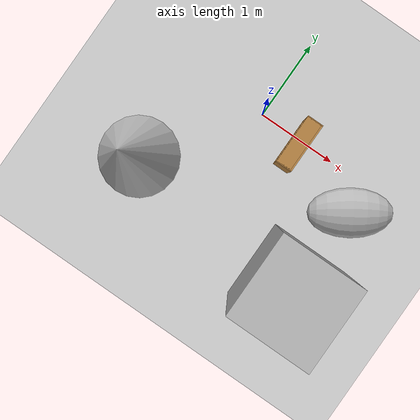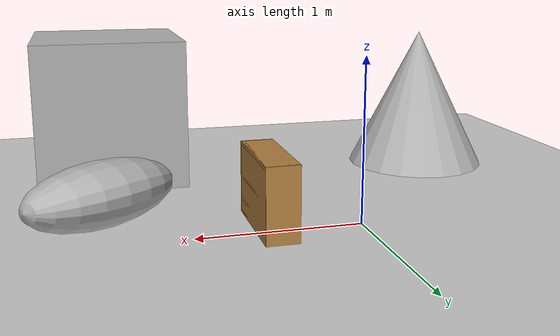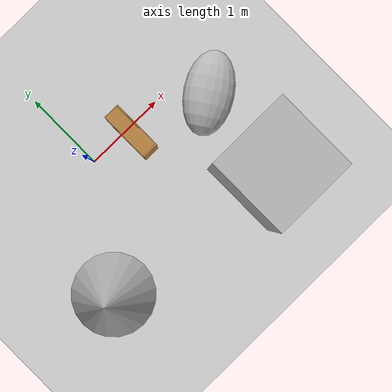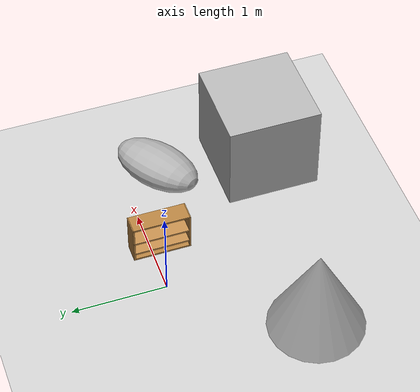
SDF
<sdf version='1.10'>
  <world name='empty'>
    <physics name='1ms' type='ignored'>
      <max_step_size>0.001</max_step_size>
      <real_time_factor>1</real_time_factor>
      <real_time_update_rate>1000</real_time_update_rate>
    </physics>
    <plugin name='gz::sim::systems::Physics' filename='gz-sim-physics-system'/>
    <plugin name='gz::sim::systems::UserCommands' filename='gz-sim-user-commands-system'/>
    <plugin name='gz::sim::systems::SceneBroadcaster' filename='gz-sim-scene-broadcaster-system'/>
    <plugin name='gz::sim::systems::Contact' filename='gz-sim-contact-system'/>
    <gravity>0 0 -9.8000000000000007</gravity>
    <magnetic_field>5.5644999999999998e-06 2.2875799999999999e-05 -4.2388400000000002e-05</magnetic_field>
    <atmosphere type='adiabatic'/>
    <scene>
      <ambient>0.400000006 0.400000006 0.400000006 1</ambient>
      <background>0.699999988 0.699999988 0.699999988 1</background>
      <shadows>true</shadows>
    </scene>
    <gui>
      <camera name='user_camera'>
        <pose>-6 0 6 0 0.5 0</pose>
      </camera>
    </gui>
    <model name='ground_plane'>
      <static>true</static>
      <link name='link'>
        <collision name='collision'>
          <geometry>
            <plane>
              <normal>0 0 1</normal>
              <size>100 100</size>
            </plane>
          </geometry>
          <surface>
            <friction>
              <ode/>
            </friction>
            <bounce/>
            <contact/>
          </surface>
        </collision>
        <visual name='visual'>
          <geometry>
            <plane>
              <normal>0 0 1</normal>
              <size>100 100</size>
            </plane>
          </geometry>
          <material>
            <ambient>0.800000012 0.800000012 0.800000012 1</ambient>
            <diffuse>0.800000012 0.800000012 0.800000012 1</diffuse>
            <specular>0.800000012 0.800000012 0.800000012 1</specular>
          </material>
        </visual>
        <pose>0 0 0 0 0 0</pose>
        <inertial>
          <pose>0 0 0 0 0 0</pose>
          <mass>1</mass>
          <inertia>
            <ixx>1</ixx>
            <ixy>0</ixy>
            <ixz>0</ixz>
            <iyy>1</iyy>
            <iyz>0</iyz>
            <izz>1</izz>
          </inertia>
        </inertial>
        <enable_wind>false</enable_wind>
      </link>
      <pose>0 0 0 0 0 0</pose>
      <self_collide>false</self_collide>
    </model>
    <model name='bookshelf'>
      <static>true</static>
      <pose>0.63 -0.10 0.0 0 0 0</pose>

      <!-- Back panel: 0.60m wide × 0.45m tall × 0.02m thick -->
      <link name='back'>
        <pose>0.0 0.0 0.225 0 0 0</pose>
        <visual name='v'><geometry><box><size>0.02 0.60 0.45</size></box></geometry>
          <material><ambient>0.55 0.35 0.15 1</ambient><diffuse>0.7 0.5 0.25 1</diffuse></material>
        </visual>
        <collision name='c'><geometry><box><size>0.02 0.60 0.45</size></box></geometry></collision>
        <inertial><mass>5</mass><inertia><ixx>0.1</ixx><ixy>0</ixy><ixz>0</ixz><iyy>0.1</iyy><iyz>0</iyz><izz>0.1</izz></inertia></inertial>
      </link>

      <!-- Left side panel -->
      <link name='side_l'>
        <pose>-0.09 -0.30 0.225 0 0 0</pose>
        <visual name='v'><geometry><box><size>0.20 0.02 0.45</size></box></geometry>
          <material><ambient>0.55 0.35 0.15 1</ambient><diffuse>0.7 0.5 0.25 1</diffuse></material>
        </visual>
        <collision name='c'><geometry><box><size>0.20 0.02 0.45</size></box></geometry></collision>
        <inertial><mass>2</mass><inertia><ixx>0.05</ixx><ixy>0</ixy><ixz>0</ixz><iyy>0.05</iyy><iyz>0</iyz><izz>0.05</izz></inertia></inertial>
      </link>

      <!-- Right side panel -->
      <link name='side_r'>
        <pose>-0.09 0.30 0.225 0 0 0</pose>
        <visual name='v'><geometry><box><size>0.20 0.02 0.45</size></box></geometry>
          <material><ambient>0.55 0.35 0.15 1</ambient><diffuse>0.7 0.5 0.25 1</diffuse></material>
        </visual>
        <collision name='c'><geometry><box><size>0.20 0.02 0.45</size></box></geometry></collision>
        <inertial><mass>2</mass><inertia><ixx>0.05</ixx><ixy>0</ixy><ixz>0</ixz><iyy>0.05</iyy><iyz>0</iyz><izz>0.05</izz></inertia></inertial>
      </link>

      <!-- Bottom board (floor of shelf) -->
      <link name='floor'>
        <pose>-0.09 0.0 0.01 0 0 0</pose>
        <visual name='v'><geometry><box><size>0.20 0.60 0.02</size></box></geometry>
          <material><ambient>0.55 0.35 0.15 1</ambient><diffuse>0.7 0.5 0.25 1</diffuse></material>
        </visual>
        <collision name='c'><geometry><box><size>0.20 0.60 0.02</size></box></geometry></collision>
        <inertial><mass>2</mass><inertia><ixx>0.05</ixx><ixy>0</ixy><ixz>0</ixz><iyy>0.05</iyy><iyz>0</iyz><izz>0.05</izz></inertia></inertial>
      </link>

      <!-- Shelf 1: top surface at z=0.10m (arm position A hovers 3cm above) -->
      <link name='shelf1'>
        <pose>-0.09 0.0 0.09 0 0 0</pose>
        <visual name='v'><geometry><box><size>0.20 0.60 0.02</size></box></geometry>
          <material><ambient>0.6 0.4 0.2 1</ambient><diffuse>0.75 0.55 0.3 1</diffuse></material>
        </visual>
        <collision name='c'><geometry><box><size>0.20 0.60 0.02</size></box></geometry></collision>
        <inertial><mass>2</mass><inertia><ixx>0.05</ixx><ixy>0</ixy><ixz>0</ixz><iyy>0.05</iyy><iyz>0</iyz><izz>0.05</izz></inertia></inertial>
      </link>

      <!-- Shelf 2: top surface at z=0.25m (arm position B hovers 3cm above) -->
      <link name='shelf2'>
        <pose>-0.09 0.0 0.24 0 0 0</pose>
        <visual name='v'><geometry><box><size>0.20 0.60 0.02</size></box></geometry>
          <material><ambient>0.6 0.4 0.2 1</ambient><diffuse>0.75 0.55 0.3 1</diffuse></material>
        </visual>
        <collision name='c'><geometry><box><size>0.20 0.60 0.02</size></box></geometry></collision>
        <inertial><mass>2</mass><inertia><ixx>0.05</ixx><ixy>0</ixy><ixz>0</ixz><iyy>0.05</iyy><iyz>0</iyz><izz>0.05</izz></inertia></inertial>
      </link>

      <!-- Top board -->
      <link name='top'>
        <pose>-0.09 0.0 0.44 0 0 0</pose>
        <visual name='v'><geometry><box><size>0.20 0.60 0.02</size></box></geometry>
          <material><ambient>0.55 0.35 0.15 1</ambient><diffuse>0.7 0.5 0.25 1</diffuse></material>
        </visual>
        <collision name='c'><geometry><box><size>0.20 0.60 0.02</size></box></geometry></collision>
        <inertial><mass>2</mass><inertia><ixx>0.05</ixx><ixy>0</ixy><ixz>0</ixz><iyy>0.05</iyy><iyz>0</iyz><izz>0.05</izz></inertia></inertial>
      </link>
    </model>

    <model name='box'>
      <pose>1.3760066261657944 -1.4864131443499584 0.49999999990199806 6.2287739151293738e-22 9.3279666454713669e-22 -3.6315533669320137e-22</pose>
      <link name='box_link'>
        <inertial>
          <inertia>
            <ixx>0.16666</ixx>
            <ixy>0</ixy>
            <ixz>0</ixz>
            <iyy>0.16666</iyy>
            <iyz>0</iyz>
            <izz>0.16666</izz>
          </inertia>
          <mass>1</mass>
          <pose>0 0 0 0 0 0</pose>
        </inertial>
        <collision name='box_collision'>
          <geometry>
            <box>
              <size>1 1 1</size>
            </box>
          </geometry>
          <surface>
            <friction>
              <ode/>
            </friction>
            <bounce/>
            <contact/>
          </surface>
        </collision>
        <visual name='box_visual'>
          <geometry>
            <box>
              <size>1 1 1</size>
            </box>
          </geometry>
          <material>
            <ambient>0.300000012 0.300000012 0.300000012 1</ambient>
            <diffuse>0.699999988 0.699999988 0.699999988 1</diffuse>
            <specular>1 1 1 1</specular>
          </material>
        </visual>
        <pose>0 0 0 0 0 0</pose>
        <enable_wind>false</enable_wind>
      </link>
      <static>false</static>
      <self_collide>false</self_collide>
    </model>
    <model name='cone'>
      <pose>-0.92896371615675888 -1.2585812350715537 0.49999999993296756 5.2541471503228405e-17 -7.7132841033694056e-10 -2.8937183272912105e-22</pose>
      <link name='cone_link'>
        <inertial>
          <inertia>
            <ixx>0.074999999999999997</ixx>
            <ixy>0</ixy>
            <ixz>0</ixz>
            <iyy>0.074999999999999997</iyy>
            <iyz>0</iyz>
            <izz>0.074999999999999997</izz>
          </inertia>
          <mass>1</mass>
          <pose>0 0 0 0 0 0</pose>
        </inertial>
        <collision name='cone_collision'>
          <geometry>
            <cone>
              <radius>0.5</radius>
              <length>1</length>
            </cone>
          </geometry>
          <surface>
            <friction>
              <ode/>
            </friction>
            <bounce/>
            <contact/>
          </surface>
        </collision>
        <visual name='cone_visual'>
          <geometry>
            <cone>
              <radius>0.5</radius>
              <length>1</length>
            </cone>
          </geometry>
          <material>
            <ambient>0.300000012 0.300000012 0.300000012 1</ambient>
            <diffuse>0.699999988 0.699999988 0.699999988 1</diffuse>
            <specular>1 1 1 1</specular>
          </material>
        </visual>
        <pose>0 0 0 0 0 0</pose>
        <enable_wind>false</enable_wind>
      </link>
      <static>false</static>
      <self_collide>false</self_collide>
    </model>
    <model name='ellipsoid'>
      <pose>1.4889404519593221 -0.3834680797744055 0.18666849058301144 1.5707963263674398 -1.3774893953724967 -0.98318968690852737</pose>
      <link name='ellipsoid_link'>
        <inertial>
          <inertia>
            <ixx>0.068000000000000005</ixx>
            <ixy>0</ixy>
            <ixz>0</ixz>
            <iyy>0.058000000000000003</iyy>
            <iyz>0</iyz>
            <izz>0.025999999999999999</izz>
          </inertia>
          <mass>1</mass>
          <pose>0 0 0 0 0 0</pose>
        </inertial>
        <collision name='ellipsoid_collision'>
          <geometry>
            <ellipsoid>
              <radii>0.20000000000000001 0.29999999999999999 0.5</radii>
            </ellipsoid>
          </geometry>
          <surface>
            <friction>
              <ode/>
            </friction>
            <bounce/>
            <contact/>
          </surface>
        </collision>
        <visual name='ellipsoid_visual'>
          <geometry>
            <ellipsoid>
              <radii>0.20000000000000001 0.29999999999999999 0.5</radii>
            </ellipsoid>
          </geometry>
          <material>
            <ambient>0.300000012 0.300000012 0.300000012 1</ambient>
            <diffuse>0.699999988 0.699999988 0.699999988 1</diffuse>
            <specular>1 1 1 1</specular>
          </material>
        </visual>
        <pose>0 0 0 0 0 0</pose>
        <enable_wind>false</enable_wind>
      </link>
      <static>false</static>
      <self_collide>false</self_collide>
    </model>
    <light name='sun' type='directional'>
      <pose>0 0 10 0 0 0</pose>
      <cast_shadows>true</cast_shadows>
      <intensity>1</intensity>
      <direction>0.5 -0.10000000000000001 -0.90000000000000002</direction>
      <diffuse>0.800000012 0.800000012 0.800000012 1</diffuse>
      <specular>0.200000003 0.200000003 0.200000003 1</specular>
      <attenuation>
        <range>1000</range>
        <linear>0.01</linear>
        <constant>0.90000000000000002</constant>
        <quadratic>0.001</quadratic>
      </attenuation>
      <spot>
        <inner_angle>0</inner_angle>
        <outer_angle>0</outer_angle>
        <falloff>0</falloff>
      </spot>
    </light>
    <gui>
      <!-- Camera: side view showing robot + bookshelf A→B motion clearly -->
      <camera name="user_camera">
        <pose>-0.5 -1.8 0.6 0.0 0.25 1.57</pose>
      </camera>
    </gui>
  </world>
</sdf>
